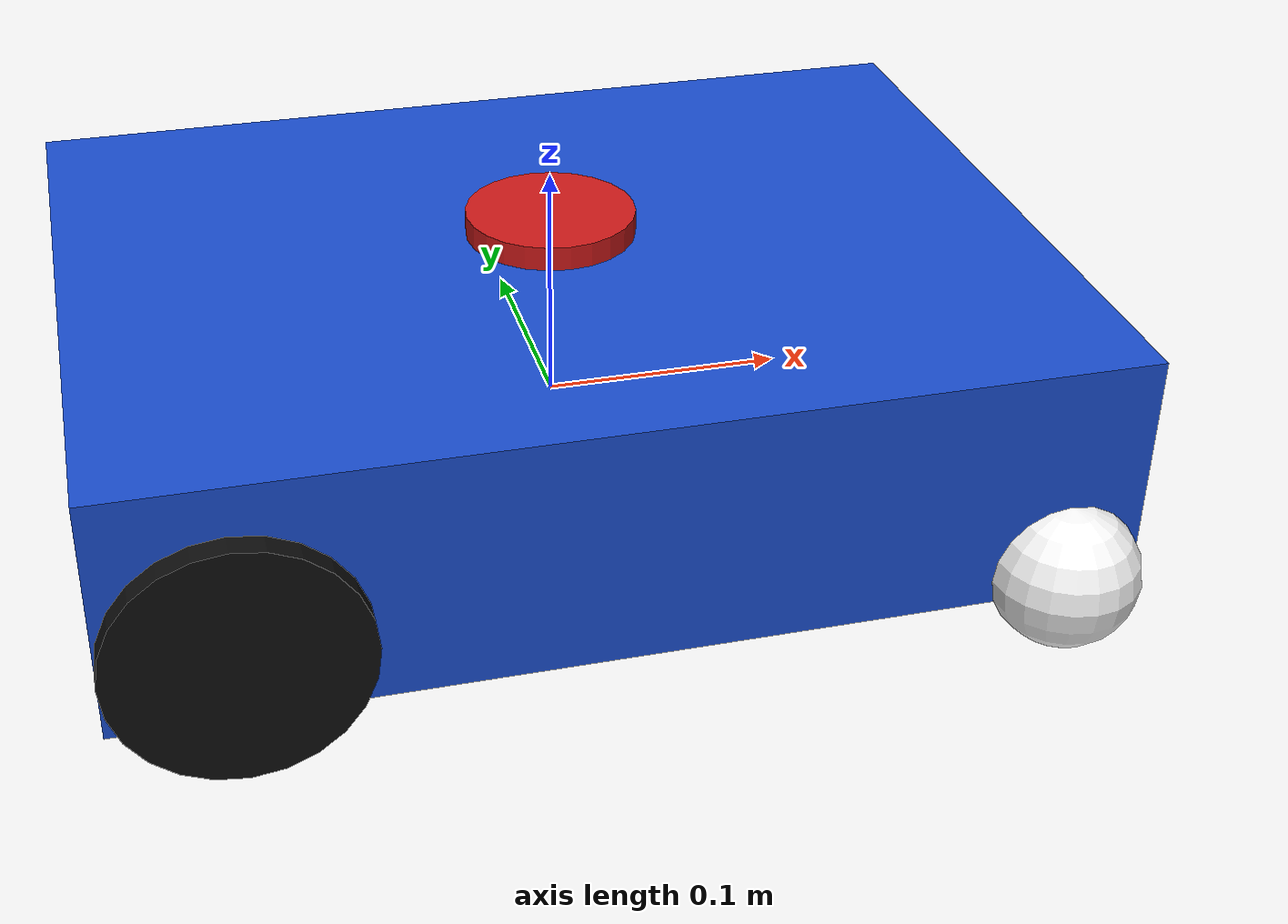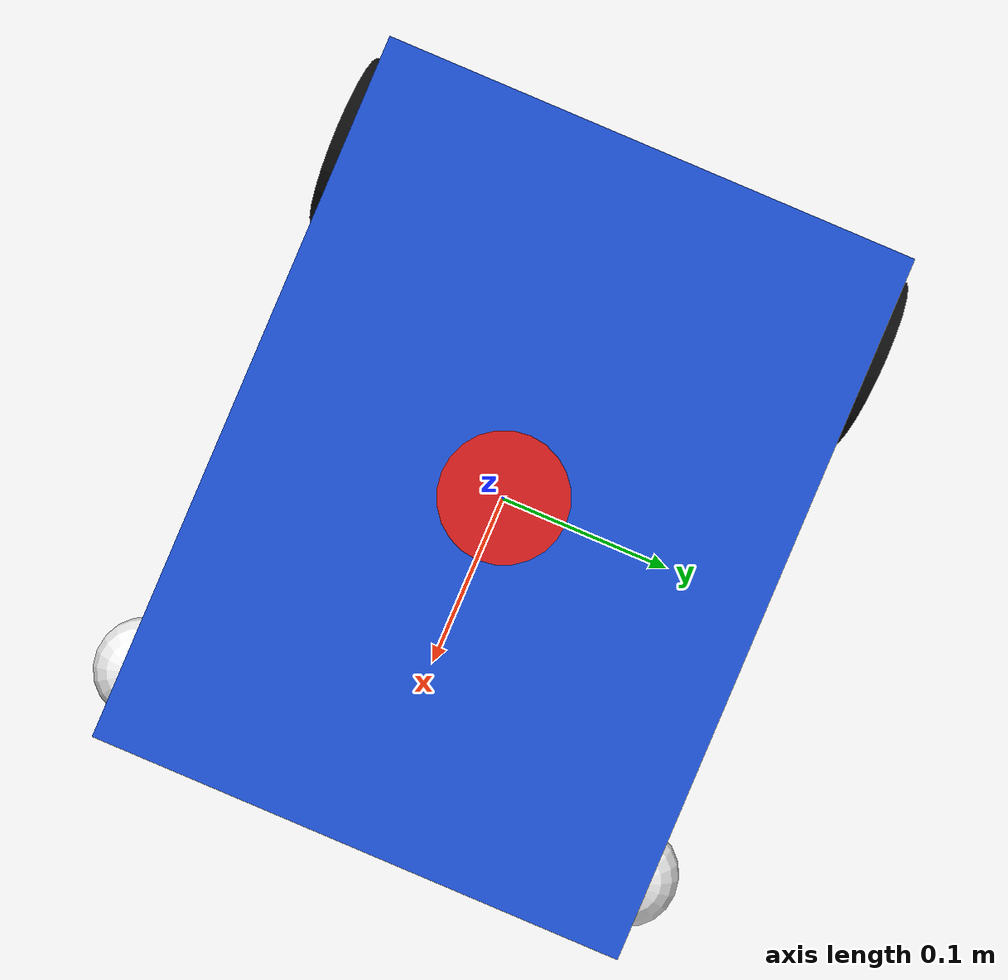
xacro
<?xml version="1.0"?>
<robot name="hockey_robot" xmlns:xacro="http://www.ros.org/wiki/xacro">

  <!-- Arguments -->
  <xacro:arg name="prefix" default=""/>
  <xacro:property name="prefix" value="$(arg prefix)"/>

  <xacro:arg name="ns" default=""/>
  <xacro:property name="ns" value="$(arg ns)"/>

  <!-- Dimensions -->
  <xacro:property name="base_length" value="0.40"/>
  <xacro:property name="base_width"  value="0.30"/>
  <xacro:property name="base_height" value="0.10"/>

  <xacro:property name="wheel_radius" value="0.05"/>
  <xacro:property name="wheel_width"  value="0.02"/>

  <xacro:property name="caster_radius" value="0.03"/>

  <!-- Offsets -->
  <xacro:property name="rear_x"  value="${-base_length/2 + wheel_radius}"/>
  <xacro:property name="front_x" value="${ base_length/2 - caster_radius}"/>
  <xacro:property name="left_y"  value="${ base_width/2}"/>
  <xacro:property name="right_y" value="${-base_width/2}"/>

  <!-- Materials -->
  <material name="Black">
    <color rgba="0.05 0.05 0.05 1.0"/>
  </material>

  <material name="Blue">
    <color rgba="0.1 0.3 0.8 1.0"/>
  </material>

  <material name="White">
    <color rgba="0.95 0.95 0.95 1.0"/>
  </material>

  <material name="Red">
    <color rgba="0.8 0.1 0.1 1.0"/>
  </material>

  <!-- BASE LINK -->
  <link name="${prefix}base_link">
    <visual>
      <geometry>
        <box size="${base_length} ${base_width} ${base_height}"/>
      </geometry>
      <origin xyz=" 0 0 0.02" rpy = "0 0 0"/>
      <material name="Blue"/>
    </visual>

    <collision>
      <geometry>
        <box size="${base_length} ${base_width} ${base_height}"/>
      </geometry>
      <origin xyz=" 0 0 0.02" rpy = "0 0 0"/>
    </collision>

    <inertial>
      <mass value="5.0"/>
      <inertia ixx="0.1" ixy="0.0" ixz="0.0"
               iyy="0.1" iyz="0.0"
               izz="0.1"/>
    </inertial>
  </link>

  <!-- LEFT WHEEL -->
  <link name="${prefix}left_wheel_link">
    <visual>
      <geometry>
        <cylinder radius="${wheel_radius}" length="${wheel_width}"/>
      </geometry>
      <origin rpy="-1.5708 0 0"/>
      <material name="Black"/>
    </visual>

    <collision>
      <geometry>
        <sphere radius="${wheel_radius}"/>
      </geometry>
      <origin rpy="-1.5708 0 0"/>
    </collision>

    <inertial>
      <mass value="0.5"/>
      <inertia ixx="0.001" iyy="0.001" izz="0.001"
               ixy="0.0" ixz="0.0" iyz="0.0"/>
    </inertial>
  </link>

  <joint name="${prefix}left_wheel_joint" type="continuous">
    <parent link="${prefix}base_link"/>
    <child link="${prefix}left_wheel_link"/>
    <origin xyz="${rear_x} ${left_y} 0"/>
    <axis xyz="0 1 0"/>
  </joint>

  <!-- RIGHT WHEEL -->
  <link name="${prefix}right_wheel_link">
    <visual>
      <geometry>
        <cylinder radius="${wheel_radius}" length="${wheel_width}"/>
      </geometry>
      <origin rpy="-1.5708 0 0"/>
      <material name="Black"/>
    </visual>

    <collision>
      <geometry>
        <sphere radius="${wheel_radius}"/>
      </geometry>
      <origin rpy="0 1.5708 0"/>
    </collision>

    <inertial>
      <mass value="0.5"/>
      <inertia ixx="0.001" iyy="0.001" izz="0.001"
               ixy="0.0" ixz="0.0" iyz="0.0"/>
    </inertial>
  </link>

  <joint name="${prefix}right_wheel_joint" type="continuous">
    <parent link="${prefix}base_link"/>
    <child link="${prefix}right_wheel_link"/>
    <origin xyz="${rear_x} ${right_y} 0"/>
    <axis xyz="0 1 0"/>
  </joint>

  <!-- FRONT LEFT CASTER -->
  <link name="${prefix}front_left_caster">
    <visual>
      <geometry>
        <sphere radius="${caster_radius}"/>
      </geometry>
      <material name="White"/>
    </visual>

    <collision>
      <geometry>
        <sphere radius="${caster_radius}"/>
      </geometry>
      <surface>
        <friction>
          <ode>
            <mu>0.1</mu>
            <mu2>0.1</mu2>
          </ode>
        </friction>
      </surface>
    </collision>

    <inertial>
      <mass value="0.1"/>
      <inertia ixx="0.0001" iyy="0.0001" izz="0.0001"
               ixy="0.0" ixz="0.0" iyz="0.0"/>
    </inertial>
  </link>

  <joint name="${prefix}front_left_caster_joint" type="fixed">
    <parent link="${prefix}base_link"/>
    <child link="${prefix}front_left_caster"/>
    <origin xyz="${front_x} ${left_y} ${-base_height/2 + caster_radius}"/>
  </joint>

  <!-- FRONT RIGHT CASTER -->
  <link name="${prefix}front_right_caster">
    <visual>
      <geometry>
        <sphere radius="${caster_radius}"/>
      </geometry>
      <material name="White"/>
    </visual>

    <collision>
      <geometry>
        <sphere radius="${caster_radius}"/>
      </geometry>
      <surface>
        <friction>
          <ode>
            <mu>0.1</mu>
            <mu2>0.1</mu2>
          </ode>
        </friction>
      </surface>
    </collision>

    <inertial>
      <mass value="0.1"/>
      <inertia ixx="0.0001" iyy="0.0001" izz="0.0001"
               ixy="0.0" ixz="0.0" iyz="0.0"/>
    </inertial>
  </link>

  <joint name="${prefix}front_right_caster_joint" type="fixed">
    <parent link="${prefix}base_link"/>
    <child link="${prefix}front_right_caster"/>
    <origin xyz="${front_x} ${right_y} ${-base_height/2 + caster_radius}"/>
  </joint>

  <!-- LIDAR -->
  <link name="${prefix}lidar_link">
    <visual>
      <geometry>
        <cylinder radius="0.035" length="0.01"/>
      </geometry>
      <origin rpy="0 0 0"/>
      <material name="Red"/>
    </visual>

    <collision>
      <geometry>
        <cylinder radius="0.035" length="0.01"/>
      </geometry>
    </collision>

    <inertial>
      <mass value="1e-6"/>
      <inertia ixx="1e-6" iyy="1e-6" izz="1e-6"
               ixy="0.0" ixz="0.0" iyz="0.0"/>
    </inertial>
  </link>

  <joint name="${prefix}lidar_joint" type="fixed">
    <parent link="${prefix}base_link"/>
    <child link="${prefix}lidar_link"/>
    <origin xyz="0 0 ${base_height/2 + 0.03}"/> <!--${base_height/2 + 0.02}-->
  </joint>

  <gazebo reference="${prefix}lidar_link">
    <sensor name="lidar" type="gpu_lidar" >
      <update_rate>10</update_rate>
      <topic>/${ns}/scan</topic>

      <frame_id>${prefix}lidar_link</frame_id>

      <lidar>
        <scan>
          <horizontal>
            <samples>720</samples>
            <min_angle>-3.14</min_angle>
            <max_angle>3.14</max_angle>
          </horizontal>
        </scan>
        <range>
          <min>0.01</min>
          <max>8.0</max>
          <resolution>0.01</resolution>
        </range>
        <noise>
          <type>gaussian</type>
          <mean>0.0</mean>
          <stddev>0.001</stddev>
        </noise>
      </lidar>
      <always_on>1</always_on>
      <visualize>true</visualize>
    </sensor>
  </gazebo>

  <!-- IMU -->
  <link name="${prefix}imu_link">
    <inertial>
      <mass value="0.01"/>
      <inertia ixx="0.00001" iyy="0.00001" izz="0.00001"
               ixy="0.0" ixz="0.0" iyz="0.0"/>
    </inertial>
  </link>

  <joint name="${prefix}imu_joint" type="fixed">
    <parent link="${prefix}base_link"/>
    <child link="${prefix}imu_link"/>
    <origin xyz="0 0 0"/>
  </joint>

  <gazebo reference="${prefix}imu_link">
    <sensor type="imu" name="imu">
      <topic>/${ns}/imu</topic>
      <frame_id>${prefix}imu_link</frame_id>
      <update_rate>100</update_rate>
      <always_on>1</always_on>
    </sensor>
  </gazebo>

  <!-- DIFFERENTIAL DRIVE -->
  <gazebo>
    <plugin filename="gz-sim-diff-drive-system"
            name="gz::sim::systems::DiffDrive">
            <render_engine>ogre2</render_engine>

      <left_joint>${prefix}left_wheel_joint</left_joint>
      <right_joint>${prefix}right_wheel_joint</right_joint>

      <wheel_separation>${base_width}</wheel_separation>
      <wheel_radius>${wheel_radius}</wheel_radius>

      <topic>/${ns}/cmd_vel</topic>
      <odom_topic>/${ns}/odom</odom_topic>
      <odom_frame>odom</odom_frame>
      <robot_base_frame>${prefix}base_link</robot_base_frame>

      <publish_odom>true</publish_odom>
      <publish_odom_tf>true</publish_odom_tf>
      <publish_wheel_tf>true</publish_wheel_tf>
    </plugin>
  </gazebo>

  <gazebo>
    <plugin
      filename="gz-sim-joint-state-publisher-system"
      name="gz::sim::systems::JointStatePublisher">
    </plugin>
  </gazebo>

  <!-- Additional Gazebo physics properties -->
  <gazebo reference="${prefix}base_link">
    <material>Gazebo/Blue</material>
  </gazebo>

  <gazebo reference="${prefix}left_wheel_link">
    <material>Gazebo/Black</material>
    <mu1>1.0</mu1>
    <mu2>1.0</mu2>
  </gazebo>

  <gazebo reference="${prefix}right_wheel_link">
    <material>Gazebo/Black</material>
    <mu1>1.0</mu1>
    <mu2>1.0</mu2>
  </gazebo>

</robot>
